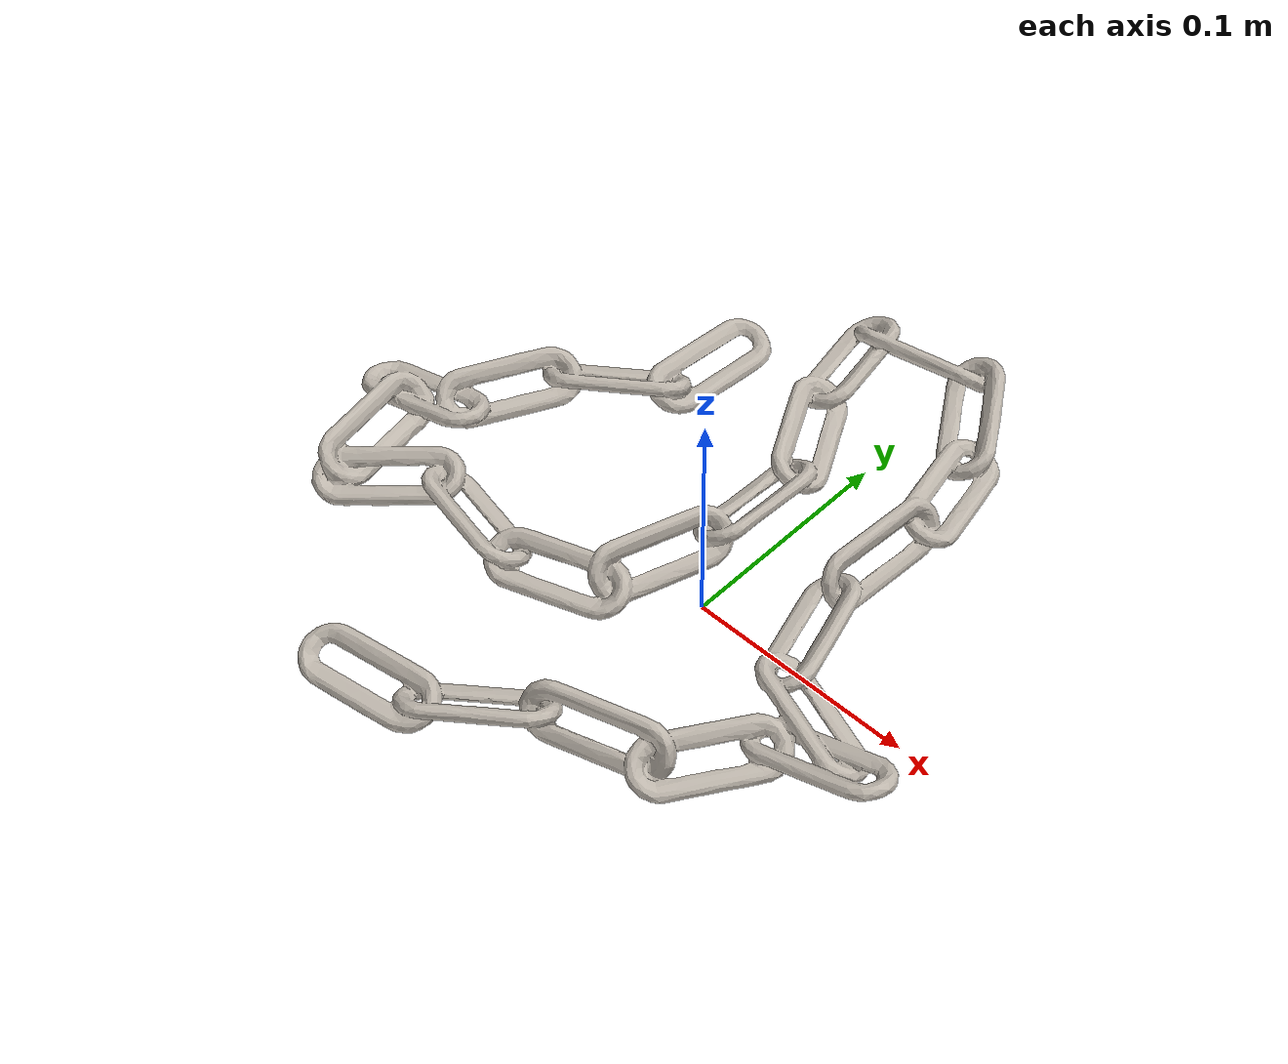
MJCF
<mujoco model="chain">
  <compiler angle="radian" meshdir="assets" texturedir="assets"/>
    <default>
        <default class="ycb_col">
            <geom contype="1" conaffinity="1" group="3" rgba=".4 .5 .6 1"/>
        </default>
        <default class="ycb_viz">
            <geom contype="0" conaffinity="0" type="mesh" mass="0"/>
        </default>
    </default>
  <asset>
    <texture type="2d" name="chain_tex" file="texture_map.png"/>
    <material name="chain_mat" texture="chain_tex" specular="0.5" shininess="0.5"/>
    <mesh file="textured.obj" name="chain"/>
    <mesh file="textured_collision_0.obj" name="chain_collision_0"/>
    <mesh file="textured_collision_1.obj" name="chain_collision_1"/>
    <mesh file="textured_collision_2.obj" name="chain_collision_2"/>
    <mesh file="textured_collision_3.obj" name="chain_collision_3"/>
    <mesh file="textured_collision_4.obj" name="chain_collision_4"/>
    <mesh file="textured_collision_5.obj" name="chain_collision_5"/>
    <mesh file="textured_collision_6.obj" name="chain_collision_6"/>
    <mesh file="textured_collision_7.obj" name="chain_collision_7"/>
    <mesh file="textured_collision_8.obj" name="chain_collision_8"/>
    <mesh file="textured_collision_9.obj" name="chain_collision_9"/>
    <mesh file="textured_collision_10.obj" name="chain_collision_10"/>
    <mesh file="textured_collision_11.obj" name="chain_collision_11"/>
    <mesh file="textured_collision_12.obj" name="chain_collision_12"/>
    <mesh file="textured_collision_13.obj" name="chain_collision_13"/>
    <mesh file="textured_collision_14.obj" name="chain_collision_14"/>
    <mesh file="textured_collision_15.obj" name="chain_collision_15"/>
    <mesh file="textured_collision_16.obj" name="chain_collision_16"/>
    <mesh file="textured_collision_17.obj" name="chain_collision_17"/>
    <mesh file="textured_collision_18.obj" name="chain_collision_18"/>
    <mesh file="textured_collision_19.obj" name="chain_collision_19"/>
    <mesh file="textured_collision_20.obj" name="chain_collision_20"/>
    <mesh file="textured_collision_21.obj" name="chain_collision_21"/>
    <mesh file="textured_collision_22.obj" name="chain_collision_22"/>
    <mesh file="textured_collision_23.obj" name="chain_collision_23"/>
    <mesh file="textured_collision_24.obj" name="chain_collision_24"/>
    <mesh file="textured_collision_25.obj" name="chain_collision_25"/>
    <mesh file="textured_collision_26.obj" name="chain_collision_26"/>
    <mesh file="textured_collision_27.obj" name="chain_collision_27"/>
    <mesh file="textured_collision_28.obj" name="chain_collision_28"/>
    <mesh file="textured_collision_29.obj" name="chain_collision_29"/>
    <mesh file="textured_collision_30.obj" name="chain_collision_30"/>
    <mesh file="textured_collision_31.obj" name="chain_collision_31"/>
    <mesh file="textured_collision_32.obj" name="chain_collision_32"/>
    <mesh file="textured_collision_33.obj" name="chain_collision_33"/>
    <mesh file="textured_collision_34.obj" name="chain_collision_34"/>
    <mesh file="textured_collision_35.obj" name="chain_collision_35"/>
    <mesh file="textured_collision_36.obj" name="chain_collision_36"/>
    <mesh file="textured_collision_37.obj" name="chain_collision_37"/>
    <mesh file="textured_collision_38.obj" name="chain_collision_38"/>
    <mesh file="textured_collision_39.obj" name="chain_collision_39"/>
    <mesh file="textured_collision_40.obj" name="chain_collision_40"/>
    <mesh file="textured_collision_41.obj" name="chain_collision_41"/>
    <mesh file="textured_collision_42.obj" name="chain_collision_42"/>
    <mesh file="textured_collision_43.obj" name="chain_collision_43"/>
    <mesh file="textured_collision_44.obj" name="chain_collision_44"/>
    <mesh file="textured_collision_45.obj" name="chain_collision_45"/>
    <mesh file="textured_collision_46.obj" name="chain_collision_46"/>
    <mesh file="textured_collision_47.obj" name="chain_collision_47"/>
    <mesh file="textured_collision_48.obj" name="chain_collision_48"/>
    <mesh file="textured_collision_49.obj" name="chain_collision_49"/>
    <mesh file="textured_collision_50.obj" name="chain_collision_50"/>
    <mesh file="textured_collision_51.obj" name="chain_collision_51"/>
    <mesh file="textured_collision_52.obj" name="chain_collision_52"/>
    <mesh file="textured_collision_53.obj" name="chain_collision_53"/>
    <mesh file="textured_collision_54.obj" name="chain_collision_54"/>
    <mesh file="textured_collision_55.obj" name="chain_collision_55"/>
    <mesh file="textured_collision_56.obj" name="chain_collision_56"/>
    <mesh file="textured_collision_57.obj" name="chain_collision_57"/>
    <mesh file="textured_collision_58.obj" name="chain_collision_58"/>
    <mesh file="textured_collision_59.obj" name="chain_collision_59"/>
    <mesh file="textured_collision_60.obj" name="chain_collision_60"/>
    <mesh file="textured_collision_61.obj" name="chain_collision_61"/>
    <mesh file="textured_collision_62.obj" name="chain_collision_62"/>
    <mesh file="textured_collision_63.obj" name="chain_collision_63"/>
    <mesh file="textured_collision_64.obj" name="chain_collision_64"/>
    <mesh file="textured_collision_65.obj" name="chain_collision_65"/>
    <mesh file="textured_collision_66.obj" name="chain_collision_66"/>
    <mesh file="textured_collision_67.obj" name="chain_collision_67"/>
    <mesh file="textured_collision_68.obj" name="chain_collision_68"/>
    <mesh file="textured_collision_69.obj" name="chain_collision_69"/>
    <mesh file="textured_collision_70.obj" name="chain_collision_70"/>
    <mesh file="textured_collision_71.obj" name="chain_collision_71"/>
    <mesh file="textured_collision_72.obj" name="chain_collision_72"/>
    <mesh file="textured_collision_73.obj" name="chain_collision_73"/>
    <mesh file="textured_collision_74.obj" name="chain_collision_74"/>
    <mesh file="textured_collision_75.obj" name="chain_collision_75"/>
    <mesh file="textured_collision_76.obj" name="chain_collision_76"/>
    <mesh file="textured_collision_77.obj" name="chain_collision_77"/>
    <mesh file="textured_collision_78.obj" name="chain_collision_78"/>
    <mesh file="textured_collision_79.obj" name="chain_collision_79"/>
  </asset>
  <worldbody>
      <geom material="chain_mat" mesh="chain" class="ycb_viz"/>
      <geom mesh="chain_collision_0" class="ycb_col" conaffinity="1" condim="4" friction="0.1 0.1 0.1" mass="0.0014802803539316592" rgba="1 1 1 1" solimp="0.99 0.99 0.01" solref=".001 0.1" type="mesh" group="3"/>
      <geom mesh="chain_collision_1" class="ycb_col" conaffinity="1" condim="4" friction="0.1 0.1 0.1" mass="0.0011344914739561652" rgba="1 1 1 1" solimp="0.99 0.99 0.01" solref=".001 0.1" type="mesh" group="3"/>
      <geom mesh="chain_collision_2" class="ycb_col" conaffinity="1" condim="4" friction="0.1 0.1 0.1" mass="0.0015344976875064434" rgba="1 1 1 1" solimp="0.99 0.99 0.01" solref=".001 0.1" type="mesh" group="3"/>
      <geom mesh="chain_collision_3" class="ycb_col" conaffinity="1" condim="4" friction="0.1 0.1 0.1" mass="0.0009766567937720516" rgba="1 1 1 1" solimp="0.99 0.99 0.01" solref=".001 0.1" type="mesh" group="3"/>
      <geom mesh="chain_collision_4" class="ycb_col" conaffinity="1" condim="4" friction="0.1 0.1 0.1" mass="0.0014165457980247335" rgba="1 1 1 1" solimp="0.99 0.99 0.01" solref=".001 0.1" type="mesh" group="3"/>
      <geom mesh="chain_collision_5" class="ycb_col" conaffinity="1" condim="4" friction="0.1 0.1 0.1" mass="0.0013539722980720037" rgba="1 1 1 1" solimp="0.99 0.99 0.01" solref=".001 0.1" type="mesh" group="3"/>
      <geom mesh="chain_collision_6" class="ycb_col" conaffinity="1" condim="4" friction="0.1 0.1 0.1" mass="0.0014233274744480894" rgba="1 1 1 1" solimp="0.99 0.99 0.01" solref=".001 0.1" type="mesh" group="3"/>
      <geom mesh="chain_collision_7" class="ycb_col" conaffinity="1" condim="4" friction="0.1 0.1 0.1" mass="0.0026180443627447955" rgba="1 1 1 1" solimp="0.99 0.99 0.01" solref=".001 0.1" type="mesh" group="3"/>
      <geom mesh="chain_collision_8" class="ycb_col" conaffinity="1" condim="4" friction="0.1 0.1 0.1" mass="0.0009329898402134569" rgba="1 1 1 1" solimp="0.99 0.99 0.01" solref=".001 0.1" type="mesh" group="3"/>
      <geom mesh="chain_collision_9" class="ycb_col" conaffinity="1" condim="4" friction="0.1 0.1 0.1" mass="0.0005891598595406881" rgba="1 1 1 1" solimp="0.99 0.99 0.01" solref=".001 0.1" type="mesh" group="3"/>
      <geom mesh="chain_collision_10" class="ycb_col" conaffinity="1" condim="4" friction="0.1 0.1 0.1" mass="0.0011523525954761126" rgba="1 1 1 1" solimp="0.99 0.99 0.01" solref=".001 0.1" type="mesh" group="3"/>
      <geom mesh="chain_collision_11" class="ycb_col" conaffinity="1" condim="4" friction="0.1 0.1 0.1" mass="0.0027677524780112188" rgba="1 1 1 1" solimp="0.99 0.99 0.01" solref=".001 0.1" type="mesh" group="3"/>
      <geom mesh="chain_collision_12" class="ycb_col" conaffinity="1" condim="4" friction="0.1 0.1 0.1" mass="0.0022543958947765035" rgba="1 1 1 1" solimp="0.99 0.99 0.01" solref=".001 0.1" type="mesh" group="3"/>
      <geom mesh="chain_collision_13" class="ycb_col" conaffinity="1" condim="4" friction="0.1 0.1 0.1" mass="0.0015953845947592753" rgba="1 1 1 1" solimp="0.99 0.99 0.01" solref=".001 0.1" type="mesh" group="3"/>
      <geom mesh="chain_collision_14" class="ycb_col" conaffinity="1" condim="4" friction="0.1 0.1 0.1" mass="0.0032071827706791132" rgba="1 1 1 1" solimp="0.99 0.99 0.01" solref=".001 0.1" type="mesh" group="3"/>
      <geom mesh="chain_collision_15" class="ycb_col" conaffinity="1" condim="4" friction="0.1 0.1 0.1" mass="0.001187341034825263" rgba="1 1 1 1" solimp="0.99 0.99 0.01" solref=".001 0.1" type="mesh" group="3"/>
      <geom mesh="chain_collision_16" class="ycb_col" conaffinity="1" condim="4" friction="0.1 0.1 0.1" mass="0.0010425288185295398" rgba="1 1 1 1" solimp="0.99 0.99 0.01" solref=".001 0.1" type="mesh" group="3"/>
      <geom mesh="chain_collision_17" class="ycb_col" conaffinity="1" condim="4" friction="0.1 0.1 0.1" mass="0.0010490882678585122" rgba="1 1 1 1" solimp="0.99 0.99 0.01" solref=".001 0.1" type="mesh" group="3"/>
      <geom mesh="chain_collision_18" class="ycb_col" conaffinity="1" condim="4" friction="0.1 0.1 0.1" mass="0.0009650336852854391" rgba="1 1 1 1" solimp="0.99 0.99 0.01" solref=".001 0.1" type="mesh" group="3"/>
      <geom mesh="chain_collision_19" class="ycb_col" conaffinity="1" condim="4" friction="0.1 0.1 0.1" mass="0.0010253609463315853" rgba="1 1 1 1" solimp="0.99 0.99 0.01" solref=".001 0.1" type="mesh" group="3"/>
      <geom mesh="chain_collision_20" class="ycb_col" conaffinity="1" condim="4" friction="0.1 0.1 0.1" mass="0.0013141730197346853" rgba="1 1 1 1" solimp="0.99 0.99 0.01" solref=".001 0.1" type="mesh" group="3"/>
      <geom mesh="chain_collision_21" class="ycb_col" conaffinity="1" condim="4" friction="0.1 0.1 0.1" mass="0.0007457818020254233" rgba="1 1 1 1" solimp="0.99 0.99 0.01" solref=".001 0.1" type="mesh" group="3"/>
      <geom mesh="chain_collision_22" class="ycb_col" conaffinity="1" condim="4" friction="0.1 0.1 0.1" mass="0.0025865969296697527" rgba="1 1 1 1" solimp="0.99 0.99 0.01" solref=".001 0.1" type="mesh" group="3"/>
      <geom mesh="chain_collision_23" class="ycb_col" conaffinity="1" condim="4" friction="0.1 0.1 0.1" mass="0.0021671160769240294" rgba="1 1 1 1" solimp="0.99 0.99 0.01" solref=".001 0.1" type="mesh" group="3"/>
      <geom mesh="chain_collision_24" class="ycb_col" conaffinity="1" condim="4" friction="0.1 0.1 0.1" mass="0.0009264221456450055" rgba="1 1 1 1" solimp="0.99 0.99 0.01" solref=".001 0.1" type="mesh" group="3"/>
      <geom mesh="chain_collision_25" class="ycb_col" conaffinity="1" condim="4" friction="0.1 0.1 0.1" mass="0.0014686001128880117" rgba="1 1 1 1" solimp="0.99 0.99 0.01" solref=".001 0.1" type="mesh" group="3"/>
      <geom mesh="chain_collision_26" class="ycb_col" conaffinity="1" condim="4" friction="0.1 0.1 0.1" mass="0.0011191983862108158" rgba="1 1 1 1" solimp="0.99 0.99 0.01" solref=".001 0.1" type="mesh" group="3"/>
      <geom mesh="chain_collision_27" class="ycb_col" conaffinity="1" condim="4" friction="0.1 0.1 0.1" mass="0.001093427804485584" rgba="1 1 1 1" solimp="0.99 0.99 0.01" solref=".001 0.1" type="mesh" group="3"/>
      <geom mesh="chain_collision_28" class="ycb_col" conaffinity="1" condim="4" friction="0.1 0.1 0.1" mass="0.0007486254576340382" rgba="1 1 1 1" solimp="0.99 0.99 0.01" solref=".001 0.1" type="mesh" group="3"/>
      <geom mesh="chain_collision_29" class="ycb_col" conaffinity="1" condim="4" friction="0.1 0.1 0.1" mass="0.0014333662116817842" rgba="1 1 1 1" solimp="0.99 0.99 0.01" solref=".001 0.1" type="mesh" group="3"/>
      <geom mesh="chain_collision_30" class="ycb_col" conaffinity="1" condim="4" friction="0.1 0.1 0.1" mass="0.0011120181597637719" rgba="1 1 1 1" solimp="0.99 0.99 0.01" solref=".001 0.1" type="mesh" group="3"/>
      <geom mesh="chain_collision_31" class="ycb_col" conaffinity="1" condim="4" friction="0.1 0.1 0.1" mass="0.0007137768161933297" rgba="1 1 1 1" solimp="0.99 0.99 0.01" solref=".001 0.1" type="mesh" group="3"/>
      <geom mesh="chain_collision_32" class="ycb_col" conaffinity="1" condim="4" friction="0.1 0.1 0.1" mass="0.0012620843176927962" rgba="1 1 1 1" solimp="0.99 0.99 0.01" solref=".001 0.1" type="mesh" group="3"/>
      <geom mesh="chain_collision_33" class="ycb_col" conaffinity="1" condim="4" friction="0.1 0.1 0.1" mass="0.001514379295518742" rgba="1 1 1 1" solimp="0.99 0.99 0.01" solref=".001 0.1" type="mesh" group="3"/>
      <geom mesh="chain_collision_34" class="ycb_col" conaffinity="1" condim="4" friction="0.1 0.1 0.1" mass="0.0005138698362106623" rgba="1 1 1 1" solimp="0.99 0.99 0.01" solref=".001 0.1" type="mesh" group="3"/>
      <geom mesh="chain_collision_35" class="ycb_col" conaffinity="1" condim="4" friction="0.1 0.1 0.1" mass="0.0010831180801605968" rgba="1 1 1 1" solimp="0.99 0.99 0.01" solref=".001 0.1" type="mesh" group="3"/>
      <geom mesh="chain_collision_36" class="ycb_col" conaffinity="1" condim="4" friction="0.1 0.1 0.1" mass="0.0009242852344537617" rgba="1 1 1 1" solimp="0.99 0.99 0.01" solref=".001 0.1" type="mesh" group="3"/>
      <geom mesh="chain_collision_37" class="ycb_col" conaffinity="1" condim="4" friction="0.1 0.1 0.1" mass="0.0009743500376500956" rgba="1 1 1 1" solimp="0.99 0.99 0.01" solref=".001 0.1" type="mesh" group="3"/>
      <geom mesh="chain_collision_38" class="ycb_col" conaffinity="1" condim="4" friction="0.1 0.1 0.1" mass="0.0012149772056546753" rgba="1 1 1 1" solimp="0.99 0.99 0.01" solref=".001 0.1" type="mesh" group="3"/>
      <geom mesh="chain_collision_39" class="ycb_col" conaffinity="1" condim="4" friction="0.1 0.1 0.1" mass="0.0017949582767444487" rgba="1 1 1 1" solimp="0.99 0.99 0.01" solref=".001 0.1" type="mesh" group="3"/>
      <geom mesh="chain_collision_40" class="ycb_col" conaffinity="1" condim="4" friction="0.1 0.1 0.1" mass="0.0012557981510138434" rgba="1 1 1 1" solimp="0.99 0.99 0.01" solref=".001 0.1" type="mesh" group="3"/>
      <geom mesh="chain_collision_41" class="ycb_col" conaffinity="1" condim="4" friction="0.1 0.1 0.1" mass="0.0023063815431801915" rgba="1 1 1 1" solimp="0.99 0.99 0.01" solref=".001 0.1" type="mesh" group="3"/>
      <geom mesh="chain_collision_42" class="ycb_col" conaffinity="1" condim="4" friction="0.1 0.1 0.1" mass="0.0009283552760684763" rgba="1 1 1 1" solimp="0.99 0.99 0.01" solref=".001 0.1" type="mesh" group="3"/>
      <geom mesh="chain_collision_43" class="ycb_col" conaffinity="1" condim="4" friction="0.1 0.1 0.1" mass="0.002260653847812894" rgba="1 1 1 1" solimp="0.99 0.99 0.01" solref=".001 0.1" type="mesh" group="3"/>
      <geom mesh="chain_collision_44" class="ycb_col" conaffinity="1" condim="4" friction="0.1 0.1 0.1" mass="0.00044509161105553646" rgba="1 1 1 1" solimp="0.99 0.99 0.01" solref=".001 0.1" type="mesh" group="3"/>
      <geom mesh="chain_collision_45" class="ycb_col" conaffinity="1" condim="4" friction="0.1 0.1 0.1" mass="0.0005240948723467213" rgba="1 1 1 1" solimp="0.99 0.99 0.01" solref=".001 0.1" type="mesh" group="3"/>
      <geom mesh="chain_collision_46" class="ycb_col" conaffinity="1" condim="4" friction="0.1 0.1 0.1" mass="0.0007873823728907749" rgba="1 1 1 1" solimp="0.99 0.99 0.01" solref=".001 0.1" type="mesh" group="3"/>
      <geom mesh="chain_collision_47" class="ycb_col" conaffinity="1" condim="4" friction="0.1 0.1 0.1" mass="0.0010588656129433406" rgba="1 1 1 1" solimp="0.99 0.99 0.01" solref=".001 0.1" type="mesh" group="3"/>
      <geom mesh="chain_collision_48" class="ycb_col" conaffinity="1" condim="4" friction="0.1 0.1 0.1" mass="0.0007563267919601327" rgba="1 1 1 1" solimp="0.99 0.99 0.01" solref=".001 0.1" type="mesh" group="3"/>
      <geom mesh="chain_collision_49" class="ycb_col" conaffinity="1" condim="4" friction="0.1 0.1 0.1" mass="0.001028758474417714" rgba="1 1 1 1" solimp="0.99 0.99 0.01" solref=".001 0.1" type="mesh" group="3"/>
      <geom mesh="chain_collision_50" class="ycb_col" conaffinity="1" condim="4" friction="0.1 0.1 0.1" mass="0.0005726721901612302" rgba="1 1 1 1" solimp="0.99 0.99 0.01" solref=".001 0.1" type="mesh" group="3"/>
      <geom mesh="chain_collision_51" class="ycb_col" conaffinity="1" condim="4" friction="0.1 0.1 0.1" mass="0.0006324394411709131" rgba="1 1 1 1" solimp="0.99 0.99 0.01" solref=".001 0.1" type="mesh" group="3"/>
      <geom mesh="chain_collision_52" class="ycb_col" conaffinity="1" condim="4" friction="0.1 0.1 0.1" mass="0.0015321680809969333" rgba="1 1 1 1" solimp="0.99 0.99 0.01" solref=".001 0.1" type="mesh" group="3"/>
      <geom mesh="chain_collision_53" class="ycb_col" conaffinity="1" condim="4" friction="0.1 0.1 0.1" mass="0.0006450429888806634" rgba="1 1 1 1" solimp="0.99 0.99 0.01" solref=".001 0.1" type="mesh" group="3"/>
      <geom mesh="chain_collision_54" class="ycb_col" conaffinity="1" condim="4" friction="0.1 0.1 0.1" mass="0.001159361952640747" rgba="1 1 1 1" solimp="0.99 0.99 0.01" solref=".001 0.1" type="mesh" group="3"/>
      <geom mesh="chain_collision_55" class="ycb_col" conaffinity="1" condim="4" friction="0.1 0.1 0.1" mass="0.00039081227806337645" rgba="1 1 1 1" solimp="0.99 0.99 0.01" solref=".001 0.1" type="mesh" group="3"/>
      <geom mesh="chain_collision_56" class="ycb_col" conaffinity="1" condim="4" friction="0.1 0.1 0.1" mass="0.001045065637055845" rgba="1 1 1 1" solimp="0.99 0.99 0.01" solref=".001 0.1" type="mesh" group="3"/>
      <geom mesh="chain_collision_57" class="ycb_col" conaffinity="1" condim="4" friction="0.1 0.1 0.1" mass="0.0018370445397010813" rgba="1 1 1 1" solimp="0.99 0.99 0.01" solref=".001 0.1" type="mesh" group="3"/>
      <geom mesh="chain_collision_58" class="ycb_col" conaffinity="1" condim="4" friction="0.1 0.1 0.1" mass="0.0006732501757003601" rgba="1 1 1 1" solimp="0.99 0.99 0.01" solref=".001 0.1" type="mesh" group="3"/>
      <geom mesh="chain_collision_59" class="ycb_col" conaffinity="1" condim="4" friction="0.1 0.1 0.1" mass="0.0011168117740460992" rgba="1 1 1 1" solimp="0.99 0.99 0.01" solref=".001 0.1" type="mesh" group="3"/>
      <geom mesh="chain_collision_60" class="ycb_col" conaffinity="1" condim="4" friction="0.1 0.1 0.1" mass="0.002517850084815103" rgba="1 1 1 1" solimp="0.99 0.99 0.01" solref=".001 0.1" type="mesh" group="3"/>
      <geom mesh="chain_collision_61" class="ycb_col" conaffinity="1" condim="4" friction="0.1 0.1 0.1" mass="0.0009617797844255765" rgba="1 1 1 1" solimp="0.99 0.99 0.01" solref=".001 0.1" type="mesh" group="3"/>
      <geom mesh="chain_collision_62" class="ycb_col" conaffinity="1" condim="4" friction="0.1 0.1 0.1" mass="0.0017485538513220056" rgba="1 1 1 1" solimp="0.99 0.99 0.01" solref=".001 0.1" type="mesh" group="3"/>
      <geom mesh="chain_collision_63" class="ycb_col" conaffinity="1" condim="4" friction="0.1 0.1 0.1" mass="0.000987091673825154" rgba="1 1 1 1" solimp="0.99 0.99 0.01" solref=".001 0.1" type="mesh" group="3"/>
      <geom mesh="chain_collision_64" class="ycb_col" conaffinity="1" condim="4" friction="0.1 0.1 0.1" mass="0.0003770038420559498" rgba="1 1 1 1" solimp="0.99 0.99 0.01" solref=".001 0.1" type="mesh" group="3"/>
      <geom mesh="chain_collision_65" class="ycb_col" conaffinity="1" condim="4" friction="0.1 0.1 0.1" mass="0.0015863387333258279" rgba="1 1 1 1" solimp="0.99 0.99 0.01" solref=".001 0.1" type="mesh" group="3"/>
      <geom mesh="chain_collision_66" class="ycb_col" conaffinity="1" condim="4" friction="0.1 0.1 0.1" mass="0.0009554725188467346" rgba="1 1 1 1" solimp="0.99 0.99 0.01" solref=".001 0.1" type="mesh" group="3"/>
      <geom mesh="chain_collision_67" class="ycb_col" conaffinity="1" condim="4" friction="0.1 0.1 0.1" mass="0.001083569731909808" rgba="1 1 1 1" solimp="0.99 0.99 0.01" solref=".001 0.1" type="mesh" group="3"/>
      <geom mesh="chain_collision_68" class="ycb_col" conaffinity="1" condim="4" friction="0.1 0.1 0.1" mass="0.001586207875303778" rgba="1 1 1 1" solimp="0.99 0.99 0.01" solref=".001 0.1" type="mesh" group="3"/>
      <geom mesh="chain_collision_69" class="ycb_col" conaffinity="1" condim="4" friction="0.1 0.1 0.1" mass="0.001608656459805514" rgba="1 1 1 1" solimp="0.99 0.99 0.01" solref=".001 0.1" type="mesh" group="3"/>
      <geom mesh="chain_collision_70" class="ycb_col" conaffinity="1" condim="4" friction="0.1 0.1 0.1" mass="0.0014271236346063323" rgba="1 1 1 1" solimp="0.99 0.99 0.01" solref=".001 0.1" type="mesh" group="3"/>
      <geom mesh="chain_collision_71" class="ycb_col" conaffinity="1" condim="4" friction="0.1 0.1 0.1" mass="0.0012022214377862487" rgba="1 1 1 1" solimp="0.99 0.99 0.01" solref=".001 0.1" type="mesh" group="3"/>
      <geom mesh="chain_collision_72" class="ycb_col" conaffinity="1" condim="4" friction="0.1 0.1 0.1" mass="0.0007179891305512711" rgba="1 1 1 1" solimp="0.99 0.99 0.01" solref=".001 0.1" type="mesh" group="3"/>
      <geom mesh="chain_collision_73" class="ycb_col" conaffinity="1" condim="4" friction="0.1 0.1 0.1" mass="0.0005739810184323029" rgba="1 1 1 1" solimp="0.99 0.99 0.01" solref=".001 0.1" type="mesh" group="3"/>
      <geom mesh="chain_collision_74" class="ycb_col" conaffinity="1" condim="4" friction="0.1 0.1 0.1" mass="0.0023345289263074927" rgba="1 1 1 1" solimp="0.99 0.99 0.01" solref=".001 0.1" type="mesh" group="3"/>
      <geom mesh="chain_collision_75" class="ycb_col" conaffinity="1" condim="4" friction="0.1 0.1 0.1" mass="0.0012072618866609504" rgba="1 1 1 1" solimp="0.99 0.99 0.01" solref=".001 0.1" type="mesh" group="3"/>
      <geom mesh="chain_collision_76" class="ycb_col" conaffinity="1" condim="4" friction="0.1 0.1 0.1" mass="0.00044048411263204247" rgba="1 1 1 1" solimp="0.99 0.99 0.01" solref=".001 0.1" type="mesh" group="3"/>
      <geom mesh="chain_collision_77" class="ycb_col" conaffinity="1" condim="4" friction="0.1 0.1 0.1" mass="0.0007546041563954104" rgba="1 1 1 1" solimp="0.99 0.99 0.01" solref=".001 0.1" type="mesh" group="3"/>
      <geom mesh="chain_collision_78" class="ycb_col" conaffinity="1" condim="4" friction="0.1 0.1 0.1" mass="0.0008970560185467358" rgba="1 1 1 1" solimp="0.99 0.99 0.01" solref=".001 0.1" type="mesh" group="3"/>
      <geom mesh="chain_collision_79" class="ycb_col" conaffinity="1" condim="4" friction="0.1 0.1 0.1" mass="0.0016583352746542329" rgba="1 1 1 1" solimp="0.99 0.99 0.01" solref=".001 0.1" type="mesh" group="3"/>
  </worldbody>
</mujoco>
